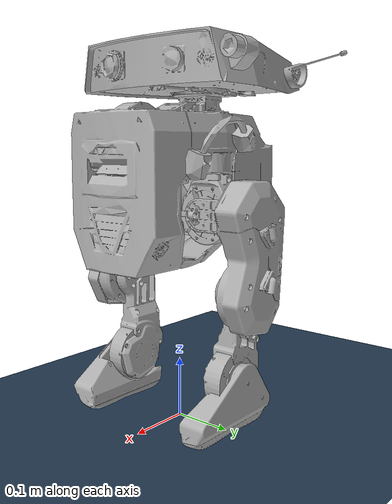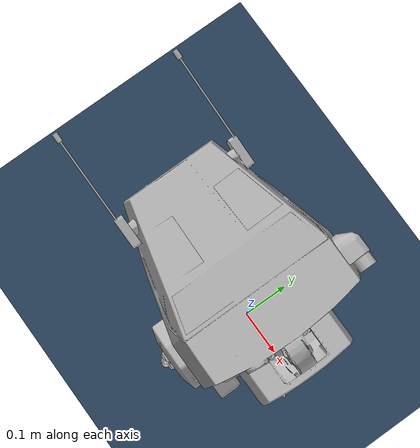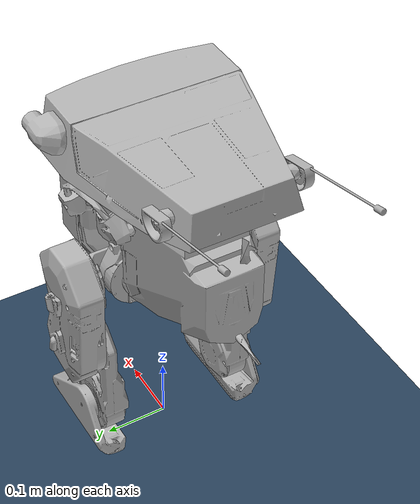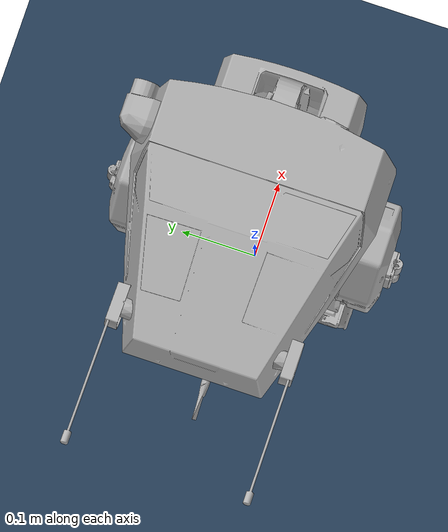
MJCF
<mujoco model="bdx_v4">
  <compiler angle="radian" meshdir="../mesh" autolimits="true" />

  <option timestep="0.001" iterations="50" solver="CG" tolerance="1e-4"/>

  <default>
    <default class="bdx">
      <default class="visual">
        <geom group="2" type="mesh" density="0" material="silver" contype="0" conaffinity="0" />
      </default>
      <default class="collision">
        <geom group="3" rgba=".2 .6 .2 1" type="capsule" contype="1" conaffinity="1" />
      </default>
      <site group="5" rgba="1 0 0 1" />
    </default>
  </default>

  <asset>
    <material name="silver" rgba="0.7 0.7 0.7 1" />
    <material name="black" rgba="0.2 0.2 0.2 1" />

    <mesh name="base_link" file="../mesh/base_link.STL" />
    <mesh name="left_hip_yaw" file="../mesh/left_hip_yaw.STL" />
    <mesh name="left_hip_roll" file="../mesh/left_hip_roll.STL" />
    <mesh name="left_hip_pitch" file="../mesh/left_hip_pitch.STL" />
    <mesh name="left_knee" file="../mesh/left_knee.STL" />
    <mesh name="left_ankle" file="../mesh/left_ankle.STL" />
    <mesh name="right_hip_yaw" file="../mesh/right_hip_yaw.STL" />
    <mesh name="right_hip_roll" file="../mesh/right_hip_roll.STL" />
    <mesh name="right_hip_pitch" file="../mesh/right_hip_pitch.STL" />
    <mesh name="right_knee" file="../mesh/right_knee.STL" />
    <mesh name="right_ankle" file="../mesh/right_ankle.STL" />
    <mesh name="neck_forward" file="../mesh/neck_forward.STL" />
    <mesh name="neck_pitch" file="../mesh/neck_pitch.STL" />
    <mesh name="neck_yaw" file="../mesh/neck_yaw.STL" />
    <mesh name="neck_roll" file="../mesh/neck_roll.STL" />
    <mesh name="left_ear" file="../mesh/left_ear.STL" />
    <mesh name="right_ear" file="../mesh/right_ear.STL" />
  </asset>

  <worldbody>
    <body name="base_link" pos="0 0 0.35" childclass="bdx">
      <freejoint name="floating_base_joint" />
      <inertial pos="-0.019956547048000001 -9.4562330000000003e-05 0.069185614313999999"
        mass="6.6133790757300002"
        diaginertia="0.039260766863999999 0.081055838429999999 0.070623365802999993" />
      <geom class="visual" mesh="base_link" />
      <geom name="base_link_collision" class="collision" type="box" pos="0 0 0.145"
        size="0.155 0.08 0.02" />
      <site name="imu_in_body" size="0.01" />
      <body name="left_hip_yaw_link"
        pos="-0.019800000000000002 0.048750000000000002 0.065100000000000005">
        <inertial pos="-0.0013704825649999974 0.0047008836579999977 -0.053614463938000005"
          mass="0.72758306889699997"
          diaginertia="0.0011982664849999999 0.00087218245400000002 0.00054045132699999995" />
        <joint name="left_hip_yaw_joint" axis="0 0 1" range="-0.349066 0.349066" />
        <geom class="visual" mesh="left_hip_yaw" />
        <body name="left_hip_roll_link"
          pos="0.017800000000000003 0.0054999999999999979 -0.065100000000000005">
          <inertial pos="0.002434906132 0.031075164804000001 -4.3982000000000003e-08"
            mass="0.17816248602099999"
            diaginertia="0.00022406375199999999 4.8951405000000001e-05 0.000207381101" />
          <joint name="left_hip_roll_joint" axis="1 0 0" range="-0.698132 0.261799" />
          <geom class="visual" mesh="left_hip_roll" />
          <body name="left_hip_pitch_link" pos="0.002 0.066700000000000009 0">
            <inertial pos="-0.001943711844 0.021611905602999998 -0.05843281744"
              mass="1.546391155801"
              diaginertia="0.0068089450609999996 0.0077723212580000003 0.0015997177419999999" />
            <joint name="left_hip_pitch_joint" axis="0 1 0" range="-0.52359 2.356194" />
            <geom class="visual" mesh="left_hip_pitch" />
            <body name="left_knee_link" pos="0 0 -0.12">
              <inertial pos="-0.0052928658590000004 -0.010948343791000001 -0.099493215772999993"
                mass="0.84008606801999997"
                diaginertia="0.0031077569760000002 0.0035335563340000002 0.00061717738599999998" />
              <joint name="left_knee_joint" axis="0 1 0" range="-2.321287 0" />
              <geom class="visual" mesh="left_knee" />
              <geom name="left_knee_collision" class="collision" mesh="left_knee" />
              <body name="left_ankle_link" pos="0 0.0083000000000000018 -0.14000000000000001">
                <site name="left_foot" rgba="1 0 0 1" pos="0.02 0 -0.075"/>
                <inertial pos="0.021285777794999999 -0.0018934604689999912 -0.037131302197999982"
                  mass="0.42536362871400002"
                  diaginertia="0.00043347552500000002 0.001268967094 0.00097118438400000003" />
                <joint name="left_ankle_joint" axis="0 1 0" range="-1.39626 1.39626" />
                <geom class="visual" mesh="left_ankle" />
                <geom name="left_foot_collision" class="collision" mesh="left_ankle" />
              </body>
            </body>
          </body>
        </body>
      </body>
      <body name="right_hip_yaw_link"
        pos="-0.019800000000000002 -0.048750000000000002 0.065100000000000005">
        <inertial pos="-0.0013603342579999976 -0.0047002975830000016 -0.053616255320000007"
          mass="0.72757471832700005"
          diaginertia="0.0011981470590000001 0.00087193251399999996 0.00054025604299999996" />
        <joint name="right_hip_yaw_joint" axis="0 0 1" range="-0.349066 0.349066" />
        <geom class="visual" mesh="right_hip_yaw" />
        <body name="right_hip_roll_link" pos="0.0178 -0.0054999999999999979 -0.065100000000000005">
          <inertial pos="0.0024349059750000002 -0.031075318821999993 -6.9957999999999997e-08"
            mass="0.17816248882999999"
            diaginertia="0.000224062441 4.8951320999999997e-05 0.00020738011399999999" />
          <joint name="right_hip_roll_joint" axis="1 0 0" range="-0.261799 0.698132" />
          <geom class="visual" mesh="right_hip_roll" />
          <body name="right_hip_pitch_link" pos="0.002 -0.066700000000000009 0">
            <inertial pos="-0.0017495255789999999 -0.021683786784999992 -0.059785911971"
              mass="1.508634573091"
              diaginertia="0.0065804438140000003 0.0074799455270000001 0.0015198501160000001" />
            <joint name="right_hip_pitch_joint" axis="0 1 0" range="-0.52359 2.356194" />
            <geom class="visual" mesh="right_hip_pitch" />
            <body name="right_knee_link" pos="0 0 -0.12">
              <inertial pos="-0.005292586264 0.010948402630000006 -0.099493689787000017"
                mass="0.84007571389500002"
                diaginertia="0.0031077264559999998 0.00353351394 0.00061717107400000005" />
              <joint name="right_knee_joint" axis="0 1 0" range="-2.321287 0" />
              <geom class="visual" mesh="right_knee" />
              <geom name="right_knee_collision" class="collision" mesh="right_knee" />
              <body name="right_ankle_link" pos="0 -0.0083000000000000018 -0.14000000000000001">
                <site name="right_foot" rgba="1 0 0 1" pos="0.02 0 -0.075"/>
                <inertial pos="0.021197320038000001 0.0019986848659999945 -0.037122430854999999"
                  mass="0.42488534599799999"
                  diaginertia="0.000433924631 0.0012674148629999999 0.00096987049100000005" />
                <joint name="right_ankle_joint" axis="0 1 0" range="-1.39626 1.39626" />
                <geom class="visual" mesh="right_ankle" />
                <geom name="right_foot_collision" class="collision" mesh="right_ankle" />
              </body>
            </body>
          </body>
        </body>
      </body>
      <body name="neck_forward_link" pos="0.078200000000000006 -0.014999999999999999 0.12675">
        <inertial pos="-0.076888397088999999 0.010328186919999999 0.025215684911999992"
          mass="0.38277457890700001" diaginertia="0.00021265397800000001 0.00095137714099999997 0.00093832168299999997" />
        <joint name="neck_forward_joint" axis="0 1 0" range="0 1.53" />
        <geom class="visual" mesh="neck_forward" />
        <body name="neck_pitch_link" pos="-0.13085017638000002 0.01529999999999995 0.033249305877000007">
          <inertial pos="-0.0079329644990000017 -0.025125774388999999 0.036720492466999988"
            mass="0.114367939988" diaginertia="0.00013656656000000001 0.00012280284800000001 7.3288706000000005e-05" />
          <joint name="neck_pitch_joint" axis="0 1 0" range="-1.5708 0" />
          <geom class="visual" mesh="neck_pitch" />
          <body name="neck_yaw_link" pos="-1.8036100000312638e-07 0.000499999999999997 0.033999999998999997">
            <inertial pos="0.013784319136999998 3.2433919999999474e-06 0.023272566920999993"
              mass="0.26127167026199999" diaginertia="0.000148809168 0.000163327401 0.00022262619099999999" />
            <joint name="neck_yaw_joint" axis="0 0 1" range="-1.0472 1.0472" />
            <geom class="visual" mesh="neck_yaw" />
            <body name="neck_roll_link" pos="0.052749913798000002 0 0.016250279823999986">
              <inertial pos="-0.041045045562000004 0.0040131266840000004 0.019271782804000021"
                mass="1.665580908708" diaginertia="0.011711821107 0.017430081654999999 0.027365107553" />
              <joint name="neck_roll_joint" axis="1 0 0" range="-0.436332 0.436332" />
              <geom class="visual" mesh="neck_roll" />
              <geom name="neck_roll_collision" class="collision" type="box" pos="-0.07 0 -0.005" size="0.15 0.15 0.01" />
              <body name="left_ear_link" pos="-0.187998839724 0.083299999999999999 0.026339002718999999">
                <inertial pos="-0.050447081206 0.027057884695000006 0.015957557960000035"
                  mass="0.028229970613000002" diaginertia="1.4040807e-05 0.00010995048 9.8995915e-05" />
                <geom class="visual" mesh="left_ear" />
              </body>
              <body name="right_ear_link" pos="-0.187998839724 -0.083299999999999999 0.026339002718999999">
                <inertial pos="-0.050406020175999988 -0.027060168963000009 0.016025766692999988"
                  mass="0.028240494080000001" diaginertia="1.4076728e-05 0.000110008266 9.9017573000000005e-05" />
                <geom class="visual" mesh="right_ear" />
              </body>
            </body>
          </body>
        </body>
      </body>
    </body>
  </worldbody>

<actuator>
  <!-- Left leg - increased stiffness -->
  <position name="left_hip_yaw_joint_motor"   joint="left_hip_yaw_joint"   kp="20" kv="10" forcerange="-15 15" ctrlrange="-0.349066 0.349066"/>
  <position name="left_hip_roll_joint_motor"  joint="left_hip_roll_joint"  kp="250" kv="40" forcerange="-15 15" ctrlrange="-0.698132 0.261799"/>
  <position name="left_hip_pitch_joint_motor" joint="left_hip_pitch_joint" kp="150" kv="15" forcerange="-80 80" ctrlrange="-0.52359 2.356194"/>
  <position name="left_knee_joint_motor"      joint="left_knee_joint"      kp="150" kv="15" forcerange="-80 80" ctrlrange="-2.321287 0"/>
  <position name="left_ankle_joint_motor"     joint="left_ankle_joint"     kp="100" kv="20" forcerange="-100 100" ctrlrange="-1.39626 1.39626"/>

  <!-- Right leg - symmetric -->
  <position name="right_hip_yaw_joint_motor"   joint="right_hip_yaw_joint"   kp="20" kv="10" forcerange="-15 15" ctrlrange="-0.349066 0.349066"/>
  <position name="right_hip_roll_joint_motor"  joint="right_hip_roll_joint"  kp="250" kv="40" forcerange="-15 15" ctrlrange="-0.261799 0.698132"/>
  <position name="right_hip_pitch_joint_motor" joint="right_hip_pitch_joint" kp="150" kv="15" forcerange="-80 80" ctrlrange="-0.52359 2.356194"/>
  <position name="right_knee_joint_motor"      joint="right_knee_joint"      kp="150" kv="15" forcerange="-80 80" ctrlrange="-2.321287 0"/>
  <position name="right_ankle_joint_motor"     joint="right_ankle_joint"     kp="100" kv="20" forcerange="-100 100" ctrlrange="-1.39626 1.39626"/>

  <!-- Neck - keep soft -->
  <position name="neck_forward_joint_motor" joint="neck_forward_joint" kp="50" kv="5.0" forcerange="-10 10" ctrlrange="0 1.53"/>
  <position name="neck_pitch_joint_motor"   joint="neck_pitch_joint"   kp="12" kv="1.2" forcerange="-8 8" ctrlrange="-1.5708 0"/>
  <position name="neck_yaw_joint_motor"     joint="neck_yaw_joint"     kp="12" kv="1.2" forcerange="-8 8" ctrlrange="-1.0472 1.0472"/>
  <position name="neck_roll_joint_motor"    joint="neck_roll_joint"    kp="12" kv="1.2" forcerange="-8 8" ctrlrange="-0.436332 0.436332"/>
</actuator>

  <!-- Add joint damping for stability -->
  <default>
    <joint damping="0.1" />
  </default>

  <sensor>
    <framequat name='orientation' objtype='site' objname='imu_in_body'/>
    <framepos name='position' objtype='site' objname='imu_in_body'/>
    <gyro name="imu_ang_vel" site="imu_in_body" />
    <accelerometer name="imu_lin_acc" site="imu_in_body" />
    <velocimeter name="imu_lin_vel" site="imu_in_body" />
    <subtreeangmom name="root_angmom" body="base_link" />
  </sensor>

  <!-- setup scene -->
  <statistic center="1.0 0.7 1.0" extent="0.8"/>
  <visual>
    <headlight diffuse="0.6 0.6 0.6" ambient="0.1 0.1 0.1" specular="0.9 0.9 0.9"/>
    <rgba haze="0.15 0.25 0.35 1"/>
    <global azimuth="-140" elevation="-20"/>
  </visual>
  <asset>
    <texture type="skybox" builtin="flat" rgb1="0 0 0" rgb2="0 0 0" width="512" height="3072"/>
    <texture type="2d" name="groundplane" builtin="checker" mark="edge" rgb1="0.2 0.3 0.4" rgb2="0.1 0.2 0.3" markrgb="0.8 0.8 0.8" width="300" height="300"/>
    <material name="groundplane" texture="groundplane" texuniform="true" texrepeat="5 5" reflectance="0.2"/>
  </asset>
  <worldbody>
    <light pos="1 0 3.5" dir="0 0 -1" directional="true"/>
    <geom contype="1" conaffinity="1" name="floor" size="0 0 0.05" type="plane" material="groundplane"/>
  </worldbody>

</mujoco>
